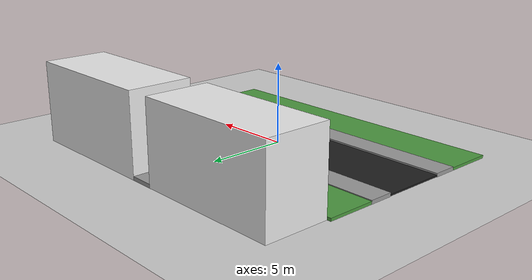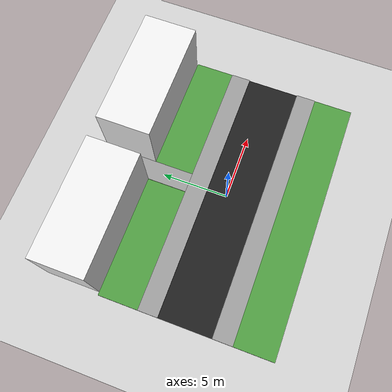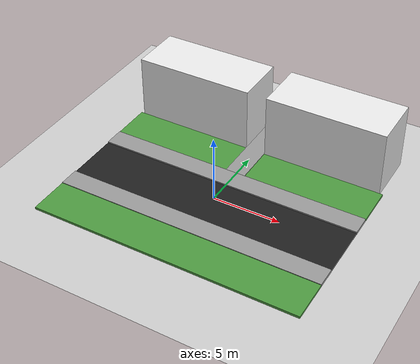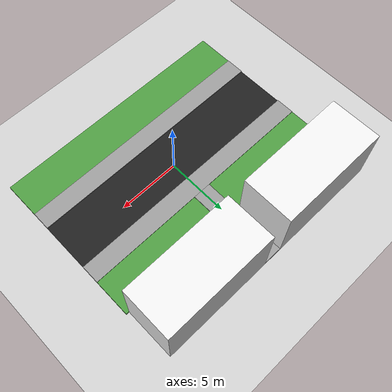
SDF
<?xml version="1.0" ?>
<sdf version="1.6">
  <world name="default">
    <!-- Słońce i ziemia -->
    <include>
      <uri>model://sun</uri>
    </include>
    <include>
      <uri>model://ground_plane</uri>
    </include>

    <!-- budynki -->
    <model name="building1">
      <static>true</static>
      <link name="link">
        <pose>-5.25 8 2 0 0 0</pose>
        <collision name="collision">
          <geometry><box><size>9 4 6</size></box></geometry>
        </collision>
        <visual name="visual">
          <geometry><box><size>9 4 6</size></box></geometry>
          <material><script>
            <uri>file://media/materials/scripts/gazebo.material</uri>
            <name>Gazebo/White</name>
          </script></material>
        </visual>
      </link>
    </model>

    <model name="building2">
      <static>true</static>
      <link name="link">
        <pose>5.25 8 2 0 0 0</pose>
        <collision name="collision">
          <geometry><box><size>9 4 6</size></box></geometry>
        </collision>
        <visual name="visual">
          <geometry><box><size>9 4 6</size></box></geometry>
          <material><script>
            <uri>file://media/materials/scripts/gazebo.material</uri>
            <name>Gazebo/White</name>
          </script></material>
        </visual>
      </link>
    </model>

    <!-- trawniki -->
    <model name="grass1">
      <static>true</static>
      <link name="link">
        <pose>-5.375 4.5 0.05 0 0 0</pose>
        <collision name="collision">
          <geometry><box><size>9.25 3 0.2</size></box></geometry>
        </collision>
        <visual name="visual">
          <geometry><box><size>9.25 3 0.2</size></box></geometry>
          <material><script>
            <uri>file://media/materials/scripts/gazebo.material</uri>
            <name>Gazebo/Grass</name>
          </script></material>
        </visual>
      </link>
    </model>

    <model name="grass2">
      <static>true</static>
      <link name="link">
        <pose>5.375 4.5 0.05 0 0 0</pose>
        <collision name="collision">
          <geometry><box><size>9.25 3 0.2</size></box></geometry>
        </collision>
        <visual name="visual">
          <geometry><box><size>9.25 3 0.2</size></box></geometry>
          <material><script>
            <uri>file://media/materials/scripts/gazebo.material</uri>
            <name>Gazebo/Grass</name>
          </script></material>
        </visual>
      </link>
    </model>

    <model name="grass3"> <!-- druga strona -->
      <static>true</static>
      <link name="link">
        <pose>0 -5.5 0.05 0 0 0</pose>
        <collision name="collision">
          <geometry><box><size>20 3 0.2</size></box></geometry>
        </collision>
        <visual name="visual">
          <geometry><box><size>20 3 0.2</size></box></geometry>
          <material><script>
            <uri>file://media/materials/scripts/gazebo.material</uri>
            <name>Gazebo/Grass</name>
          </script></material>
        </visual>
      </link>
    </model>

    <!-- chodnik -->
    <model name="sidewalk1">
      <static>true</static>
      <link name="link">
        <pose>0 2.25 0.05 0 0 0</pose>
        <collision name="collision">
          <geometry>
            <box><size>20 1.5 0.3</size></box>
          </geometry>
        </collision>
        <visual name="visual">
          <geometry>
            <box><size>20 1.5 0.3</size></box>
          </geometry>
          <material>
            <script>
              <uri>file://media/materials/scripts/gazebo.material</uri>
              <name>Gazebo/Grey</name>
            </script>
          </material>
        </visual>
      </link>
    </model>

    <model name="sidewalk2">
      <static>true</static>
      <link name="link">
        <pose>0 6.5 0.05 0 0 1.5708</pose> <!-- 1.5708 rad = 90 stopni -->
        <collision name="collision">
          <geometry>
            <box><size>7 1.5 0.3</size></box>
          </geometry>
        </collision>
        <visual name="visual">
          <geometry>
            <box><size>7 1.5 0.3</size></box>
          </geometry>
          <material>
            <script>
              <uri>file://media/materials/scripts/gazebo.material</uri>
              <name>Gazebo/Grey</name>
            </script>
          </material>
        </visual>
      </link>
    </model>

    <model name="sidewalk3">  <!-- druga strona -->
      <static>true</static>
      <link name="link">
        <pose>0 -3.25 0.05 0 0 0</pose>
        <collision name="collision">
          <geometry><box><size>20 1.5 0.3</size></box></geometry>
        </collision>
        <visual name="visual">
          <geometry><box><size>20 1.5 0.3</size></box></geometry>
          <material><script>
            <uri>file://media/materials/scripts/gazebo.material</uri>
            <name>Gazebo/Grey</name>
          </script></material>
        </visual>
      </link>
    </model>

    <!-- droga -->
    <model name="road1">
      <static>true</static>
      <link name="link">
        <pose>0 -0.5 0.05 0 0 0</pose>
        <collision name="collision">
          <geometry><box><size>20 4 0.1</size></box></geometry>
        </collision>
        <visual name="visual">
          <geometry><box><size>20 4 0.1</size></box></geometry>
          <material><script>
            <uri>file://media/materials/scripts/gazebo.material</uri>
            <name>Gazebo/Black</name>
          </script></material>
        </visual>
      </link>
    </model>

  </world>
</sdf>
